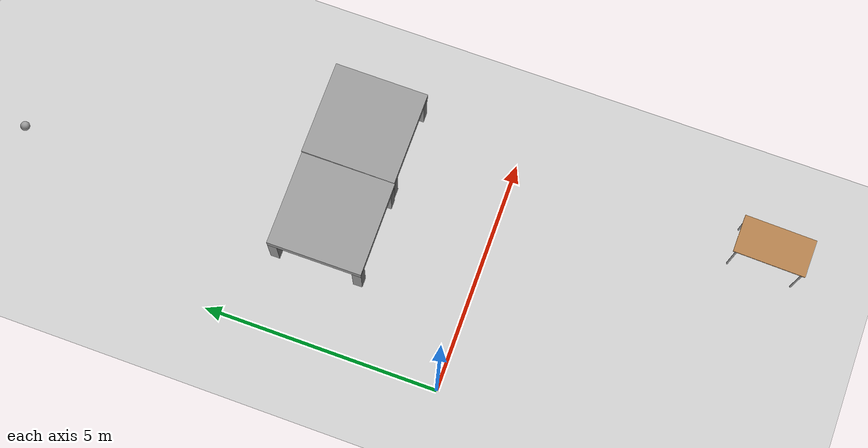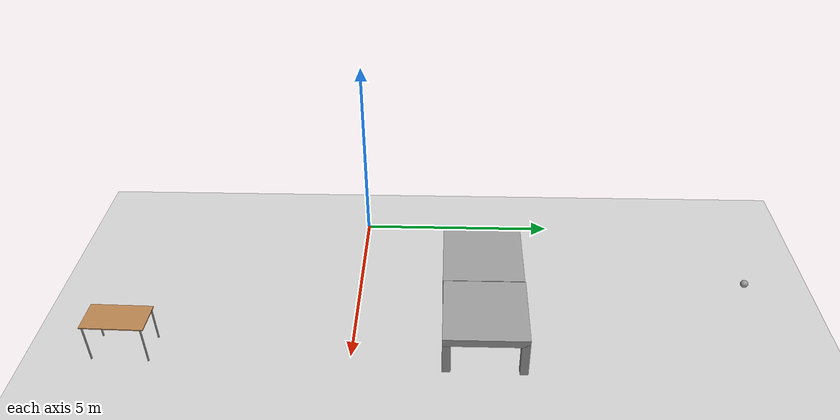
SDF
<sdf version="1.6">
 <world name="default">
  <model name="ground_plane">
   <static>1</static>
   <link name="link">
    <collision name="collision">
     <geometry><plane><normal>0 0 1</normal><size>100 100</size></plane></geometry>
     <surface>
      <contact><collide_bitmask>65535</collide_bitmask></contact>
      <friction><ode><mu>100</mu><mu2>50</mu2></ode></friction>
     </surface>
    </collision>
    <visual name="visual">
     <cast_shadows>0</cast_shadows>
     <geometry><plane><normal>0 0 1</normal><size>100 100</size></plane></geometry>
     <material>
      <script><uri>file://media/materials/scripts/gazebo.material</uri><name>Gazebo/Grey</name></script>
     </material>
    </visual>
   </link>
  </model>
  <model name="TableSmall_clone">
   <link name="link_0">
    <pose>0.868 -0.9 -0.096 0 -0 0</pose>
    <inertial>
     <mass>1</mass>
     <inertia>
      <ixx>0.166667</ixx>
      <ixy>0</ixy>
      <ixz>0</ixz>
      <iyy>0.166667</iyy>
      <iyz>0</iyz>
      <izz>0.166667</izz>
     </inertia>
    </inertial>
    <visual name="visual">
     <geometry><box><size>0.2 0.2 1</size></box></geometry>
     <material>
      <lighting>1</lighting>
      <script><uri>file://media/materials/scripts/gazebo.material</uri><name>Gazebo/Grey</name></script>
      <shader type="pixel"><normal_map>__default__</normal_map></shader>
      <ambient>0.3 0.3 0.3 1</ambient>
      <diffuse>0.7 0.7 0.7 1</diffuse>
      <specular>0.01 0.01 0.01 1</specular>
      <emissive>0 0 0 1</emissive>
     </material>
    </visual>
    <collision name="collision">
     <geometry><box><size>0.2 0.2 1</size></box></geometry>
     <surface>
      <friction>
       <ode><mu>1</mu><mu2>1</mu2><fdir1>0 0 0</fdir1><slip1>0</slip1><slip2>0</slip2></ode>
       <torsional>
        <coefficient>1</coefficient>
        <patch_radius>0</patch_radius>
        <surface_radius>0</surface_radius>
        <use_patch_radius>1</use_patch_radius>
        <ode><slip>0</slip></ode>
       </torsional>
      </friction>
      <bounce><restitution_coefficient>0</restitution_coefficient><threshold>1e+06</threshold></bounce>
      <contact>
       <collide_without_contact>0</collide_without_contact>
       <collide_without_contact_bitmask>1</collide_without_contact_bitmask>
       <collide_bitmask>1</collide_bitmask>
       <ode>
        <soft_cfm>0</soft_cfm>
        <soft_erp>0.2</soft_erp>
        <kp>1e+13</kp>
        <kd>1</kd>
        <max_vel>0.01</max_vel>
        <min_depth>0</min_depth>
       </ode>
       <bullet>
        <split_impulse>1</split_impulse>
        <split_impulse_penetration_threshold>-0.01</split_impulse_penetration_threshold>
        <soft_cfm>0</soft_cfm>
        <soft_erp>0.2</soft_erp>
        <kp>1e+13</kp>
        <kd>1</kd>
       </bullet>
      </contact>
     </surface>
    </collision>
   </link>
   <link name="link_0_clone">
    <pose>-0.892 -0.9 -0.096 0 -0 0</pose>
    <inertial>
     <mass>1</mass>
     <inertia>
      <ixx>0.166667</ixx>
      <ixy>0</ixy>
      <ixz>0</ixz>
      <iyy>0.166667</iyy>
      <iyz>0</iyz>
      <izz>0.166667</izz>
     </inertia>
    </inertial>
    <visual name="visual">
     <geometry><box><size>0.2 0.2 1</size></box></geometry>
     <material>
      <lighting>1</lighting>
      <script><uri>file://media/materials/scripts/gazebo.material</uri><name>Gazebo/Grey</name></script>
      <shader type="pixel"><normal_map>__default__</normal_map></shader>
      <ambient>0.3 0.3 0.3 1</ambient>
      <diffuse>0.7 0.7 0.7 1</diffuse>
      <specular>0.01 0.01 0.01 1</specular>
      <emissive>0 0 0 1</emissive>
     </material>
    </visual>
    <collision name="collision">
     <geometry><box><size>0.2 0.2 1</size></box></geometry>
     <surface>
      <friction>
       <ode><mu>1</mu><mu2>1</mu2><fdir1>0 0 0</fdir1><slip1>0</slip1><slip2>0</slip2></ode>
       <torsional>
        <coefficient>1</coefficient>
        <patch_radius>0</patch_radius>
        <surface_radius>0</surface_radius>
        <use_patch_radius>1</use_patch_radius>
        <ode><slip>0</slip></ode>
       </torsional>
      </friction>
      <bounce><restitution_coefficient>0</restitution_coefficient><threshold>1e+06</threshold></bounce>
      <contact>
       <collide_without_contact>0</collide_without_contact>
       <collide_without_contact_bitmask>1</collide_without_contact_bitmask>
       <collide_bitmask>1</collide_bitmask>
       <ode>
        <soft_cfm>0</soft_cfm>
        <soft_erp>0.2</soft_erp>
        <kp>1e+13</kp>
        <kd>1</kd>
        <max_vel>0.01</max_vel>
        <min_depth>0</min_depth>
       </ode>
       <bullet>
        <split_impulse>1</split_impulse>
        <split_impulse_penetration_threshold>-0.01</split_impulse_penetration_threshold>
        <soft_cfm>0</soft_cfm>
        <soft_erp>0.2</soft_erp>
        <kp>1e+13</kp>
        <kd>1</kd>
       </bullet>
      </contact>
     </surface>
    </collision>
   </link>
   <link name="link_0_clone_0">
    <pose>-0.892 0.9 -0.096 0 -0 0</pose>
    <inertial>
     <mass>1</mass>
     <inertia>
      <ixx>0.166667</ixx>
      <ixy>0</ixy>
      <ixz>0</ixz>
      <iyy>0.166667</iyy>
      <iyz>0</iyz>
      <izz>0.166667</izz>
     </inertia>
    </inertial>
    <visual name="visual">
     <geometry><box><size>0.2 0.2 1</size></box></geometry>
     <material>
      <lighting>1</lighting>
      <script><uri>file://media/materials/scripts/gazebo.material</uri><name>Gazebo/Grey</name></script>
      <shader type="pixel"><normal_map>__default__</normal_map></shader>
      <ambient>0.3 0.3 0.3 1</ambient>
      <diffuse>0.7 0.7 0.7 1</diffuse>
      <specular>0.01 0.01 0.01 1</specular>
      <emissive>0 0 0 1</emissive>
     </material>
    </visual>
    <collision name="collision">
     <geometry><box><size>0.2 0.2 1</size></box></geometry>
     <surface>
      <friction>
       <ode><mu>1</mu><mu2>1</mu2><fdir1>0 0 0</fdir1><slip1>0</slip1><slip2>0</slip2></ode>
       <torsional>
        <coefficient>1</coefficient>
        <patch_radius>0</patch_radius>
        <surface_radius>0</surface_radius>
        <use_patch_radius>1</use_patch_radius>
        <ode><slip>0</slip></ode>
       </torsional>
      </friction>
      <bounce><restitution_coefficient>0</restitution_coefficient><threshold>1e+06</threshold></bounce>
      <contact>
       <collide_without_contact>0</collide_without_contact>
       <collide_without_contact_bitmask>1</collide_without_contact_bitmask>
       <collide_bitmask>1</collide_bitmask>
       <ode>
        <soft_cfm>0</soft_cfm>
        <soft_erp>0.2</soft_erp>
        <kp>1e+13</kp>
        <kd>1</kd>
        <max_vel>0.01</max_vel>
        <min_depth>0</min_depth>
       </ode>
       <bullet>
        <split_impulse>1</split_impulse>
        <split_impulse_penetration_threshold>-0.01</split_impulse_penetration_threshold>
        <soft_cfm>0</soft_cfm>
        <soft_erp>0.2</soft_erp>
        <kp>1e+13</kp>
        <kd>1</kd>
       </bullet>
      </contact>
     </surface>
    </collision>
   </link>
   <link name="link_0_clone_1">
    <pose>0.908 0.9 -0.096 0 -0 0</pose>
    <inertial>
     <mass>1</mass>
     <inertia>
      <ixx>0.166667</ixx>
      <ixy>0</ixy>
      <ixz>0</ixz>
      <iyy>0.166667</iyy>
      <iyz>0</iyz>
      <izz>0.166667</izz>
     </inertia>
    </inertial>
    <visual name="visual">
     <geometry><box><size>0.2 0.2 1</size></box></geometry>
     <material>
      <lighting>1</lighting>
      <script><uri>file://media/materials/scripts/gazebo.material</uri><name>Gazebo/Grey</name></script>
      <shader type="pixel"><normal_map>__default__</normal_map></shader>
      <ambient>0.3 0.3 0.3 1</ambient>
      <diffuse>0.7 0.7 0.7 1</diffuse>
      <specular>0.01 0.01 0.01 1</specular>
      <emissive>0 0 0 1</emissive>
     </material>
    </visual>
    <collision name="collision">
     <geometry><box><size>0.2 0.2 1</size></box></geometry>
     <surface>
      <friction>
       <ode><mu>1</mu><mu2>1</mu2><fdir1>0 0 0</fdir1><slip1>0</slip1><slip2>0</slip2></ode>
       <torsional>
        <coefficient>1</coefficient>
        <patch_radius>0</patch_radius>
        <surface_radius>0</surface_radius>
        <use_patch_radius>1</use_patch_radius>
        <ode><slip>0</slip></ode>
       </torsional>
      </friction>
      <bounce><restitution_coefficient>0</restitution_coefficient><threshold>1e+06</threshold></bounce>
      <contact>
       <collide_without_contact>0</collide_without_contact>
       <collide_without_contact_bitmask>1</collide_without_contact_bitmask>
       <collide_bitmask>1</collide_bitmask>
       <ode>
        <soft_cfm>0</soft_cfm>
        <soft_erp>0.2</soft_erp>
        <kp>1e+13</kp>
        <kd>1</kd>
        <max_vel>0.01</max_vel>
        <min_depth>0</min_depth>
       </ode>
       <bullet>
        <split_impulse>1</split_impulse>
        <split_impulse_penetration_threshold>-0.01</split_impulse_penetration_threshold>
        <soft_cfm>0</soft_cfm>
        <soft_erp>0.2</soft_erp>
        <kp>1e+13</kp>
        <kd>1</kd>
       </bullet>
      </contact>
     </surface>
    </collision>
   </link>
   <link name="link_1">
    <pose>0.008 0 0.384 0 -0 0</pose>
    <inertial>
     <mass>1</mass>
     <inertia>
      <ixx>0.166667</ixx>
      <ixy>0</ixy>
      <ixz>0</ixz>
      <iyy>0.166667</iyy>
      <iyz>0</iyz>
      <izz>0.166667</izz>
     </inertia>
    </inertial>
    <visual name="visual">
     <geometry><box><size>2 2 0.2</size></box></geometry>
     <material>
      <lighting>1</lighting>
      <script><uri>file://media/materials/scripts/gazebo.material</uri><name>Gazebo/Grey</name></script>
      <shader type="pixel"><normal_map>__default__</normal_map></shader>
      <ambient>0.3 0.3 0.3 1</ambient>
      <diffuse>0.7 0.7 0.7 1</diffuse>
      <specular>0.01 0.01 0.01 1</specular>
      <emissive>0 0 0 1</emissive>
     </material>
    </visual>
    <collision name="collision">
     <geometry><box><size>2 2 0.2</size></box></geometry>
     <surface>
      <friction>
       <ode><mu>1</mu><mu2>1</mu2><fdir1>0 0 0</fdir1><slip1>0</slip1><slip2>0</slip2></ode>
       <torsional>
        <coefficient>1</coefficient>
        <patch_radius>0</patch_radius>
        <surface_radius>0</surface_radius>
        <use_patch_radius>1</use_patch_radius>
        <ode><slip>0</slip></ode>
       </torsional>
      </friction>
      <bounce><restitution_coefficient>0</restitution_coefficient><threshold>1e+06</threshold></bounce>
      <contact>
       <collide_without_contact>0</collide_without_contact>
       <collide_without_contact_bitmask>1</collide_without_contact_bitmask>
       <collide_bitmask>1</collide_bitmask>
       <ode>
        <soft_cfm>0</soft_cfm>
        <soft_erp>0.2</soft_erp>
        <kp>1e+13</kp>
        <kd>1</kd>
        <max_vel>0.01</max_vel>
        <min_depth>0</min_depth>
       </ode>
       <bullet>
        <split_impulse>1</split_impulse>
        <split_impulse_penetration_threshold>-0.01</split_impulse_penetration_threshold>
        <soft_cfm>0</soft_cfm>
        <soft_erp>0.2</soft_erp>
        <kp>1e+13</kp>
        <kd>1</kd>
       </bullet>
      </contact>
     </surface>
    </collision>
   </link>
   <joint name="link_1_JOINT_0" type="fixed">
    <parent>link_1</parent>
    <child>link_0_clone_1</child>
    <physics>
     <ode><limit><cfm>0</cfm><erp>0.2</erp></limit><suspension><cfm>0</cfm><erp>0.2</erp></suspension></ode>
    </physics>
   </joint>
   <joint name="link_1_JOINT_1" type="fixed">
    <parent>link_1</parent>
    <child>link_0_clone_0</child>
    <physics>
     <ode><limit><cfm>0</cfm><erp>0.2</erp></limit><suspension><cfm>0</cfm><erp>0.2</erp></suspension></ode>
    </physics>
   </joint>
   <joint name="link_1_JOINT_2" type="revolute">
    <parent>link_1</parent>
    <child>link_0</child>
    <axis>
     <xyz>1 0 0</xyz>
     <use_parent_model_frame>0</use_parent_model_frame>
     <limit>
      <lower>-1.79769e+308</lower>
      <upper>1.79769e+308</upper>
      <effort>-1</effort>
      <velocity>-1</velocity>
     </limit>
     <dynamics>
      <spring_reference>0</spring_reference>
      <spring_stiffness>0</spring_stiffness>
      <damping>0</damping>
     </dynamics>
    </axis>
    <physics>
     <ode><limit><cfm>0</cfm><erp>0.2</erp></limit><suspension><cfm>0</cfm><erp>0.2</erp></suspension></ode>
    </physics>
   </joint>
   <joint name="link_1_JOINT_3" type="revolute">
    <parent>link_1</parent>
    <child>link_0_clone</child>
    <axis>
     <xyz>1 0 0</xyz>
     <use_parent_model_frame>0</use_parent_model_frame>
     <limit>
      <lower>-1.79769e+308</lower>
      <upper>1.79769e+308</upper>
      <effort>-1</effort>
      <velocity>-1</velocity>
     </limit>
     <dynamics>
      <spring_reference>0</spring_reference>
      <spring_stiffness>0</spring_stiffness>
      <damping>0</damping>
     </dynamics>
    </axis>
    <physics>
     <ode><limit><cfm>0</cfm><erp>0.2</erp></limit><suspension><cfm>0</cfm><erp>0.2</erp></suspension></ode>
    </physics>
   </joint>
   <static>0</static>
   <pose>4.49064 3.159 0.596 0 0 -0.001941</pose>
  </model>
  <model name="TableSmall_clone_clone">
   <link name="link_0">
    <pose>0.868 -0.9 -0.096 0 -0 0</pose>
    <inertial>
     <mass>1</mass>
     <inertia>
      <ixx>0.166667</ixx>
      <ixy>0</ixy>
      <ixz>0</ixz>
      <iyy>0.166667</iyy>
      <iyz>0</iyz>
      <izz>0.166667</izz>
     </inertia>
    </inertial>
    <visual name="visual">
     <geometry><box><size>0.2 0.2 1</size></box></geometry>
     <material>
      <lighting>1</lighting>
      <script><uri>file://media/materials/scripts/gazebo.material</uri><name>Gazebo/Grey</name></script>
      <shader type="pixel"><normal_map>__default__</normal_map></shader>
      <ambient>0.3 0.3 0.3 1</ambient>
      <diffuse>0.7 0.7 0.7 1</diffuse>
      <specular>0.01 0.01 0.01 1</specular>
      <emissive>0 0 0 1</emissive>
     </material>
    </visual>
    <collision name="collision">
     <geometry><box><size>0.2 0.2 1</size></box></geometry>
     <surface>
      <friction>
       <ode><mu>1</mu><mu2>1</mu2><fdir1>0 0 0</fdir1><slip1>0</slip1><slip2>0</slip2></ode>
       <torsional>
        <coefficient>1</coefficient>
        <patch_radius>0</patch_radius>
        <surface_radius>0</surface_radius>
        <use_patch_radius>1</use_patch_radius>
        <ode><slip>0</slip></ode>
       </torsional>
      </friction>
      <bounce><restitution_coefficient>0</restitution_coefficient><threshold>1e+06</threshold></bounce>
      <contact>
       <collide_without_contact>0</collide_without_contact>
       <collide_without_contact_bitmask>1</collide_without_contact_bitmask>
       <collide_bitmask>1</collide_bitmask>
       <ode>
        <soft_cfm>0</soft_cfm>
        <soft_erp>0.2</soft_erp>
        <kp>1e+13</kp>
        <kd>1</kd>
        <max_vel>0.01</max_vel>
        <min_depth>0</min_depth>
       </ode>
       <bullet>
        <split_impulse>1</split_impulse>
        <split_impulse_penetration_threshold>-0.01</split_impulse_penetration_threshold>
        <soft_cfm>0</soft_cfm>
        <soft_erp>0.2</soft_erp>
        <kp>1e+13</kp>
        <kd>1</kd>
       </bullet>
      </contact>
     </surface>
    </collision>
   </link>
   <link name="link_0_clone">
    <pose>-0.892 -0.9 -0.096 0 -0 0</pose>
    <inertial>
     <mass>1</mass>
     <inertia>
      <ixx>0.166667</ixx>
      <ixy>0</ixy>
      <ixz>0</ixz>
      <iyy>0.166667</iyy>
      <iyz>0</iyz>
      <izz>0.166667</izz>
     </inertia>
    </inertial>
    <visual name="visual">
     <geometry><box><size>0.2 0.2 1</size></box></geometry>
     <material>
      <lighting>1</lighting>
      <script><uri>file://media/materials/scripts/gazebo.material</uri><name>Gazebo/Grey</name></script>
      <shader type="pixel"><normal_map>__default__</normal_map></shader>
      <ambient>0.3 0.3 0.3 1</ambient>
      <diffuse>0.7 0.7 0.7 1</diffuse>
      <specular>0.01 0.01 0.01 1</specular>
      <emissive>0 0 0 1</emissive>
     </material>
    </visual>
    <collision name="collision">
     <geometry><box><size>0.2 0.2 1</size></box></geometry>
     <surface>
      <friction>
       <ode><mu>1</mu><mu2>1</mu2><fdir1>0 0 0</fdir1><slip1>0</slip1><slip2>0</slip2></ode>
       <torsional>
        <coefficient>1</coefficient>
        <patch_radius>0</patch_radius>
        <surface_radius>0</surface_radius>
        <use_patch_radius>1</use_patch_radius>
        <ode><slip>0</slip></ode>
       </torsional>
      </friction>
      <bounce><restitution_coefficient>0</restitution_coefficient><threshold>1e+06</threshold></bounce>
      <contact>
       <collide_without_contact>0</collide_without_contact>
       <collide_without_contact_bitmask>1</collide_without_contact_bitmask>
       <collide_bitmask>1</collide_bitmask>
       <ode>
        <soft_cfm>0</soft_cfm>
        <soft_erp>0.2</soft_erp>
        <kp>1e+13</kp>
        <kd>1</kd>
        <max_vel>0.01</max_vel>
        <min_depth>0</min_depth>
       </ode>
       <bullet>
        <split_impulse>1</split_impulse>
        <split_impulse_penetration_threshold>-0.01</split_impulse_penetration_threshold>
        <soft_cfm>0</soft_cfm>
        <soft_erp>0.2</soft_erp>
        <kp>1e+13</kp>
        <kd>1</kd>
       </bullet>
      </contact>
     </surface>
    </collision>
   </link>
   <link name="link_0_clone_0">
    <pose>-0.892 0.9 -0.096 0 -0 0</pose>
    <inertial>
     <mass>1</mass>
     <inertia>
      <ixx>0.166667</ixx>
      <ixy>0</ixy>
      <ixz>0</ixz>
      <iyy>0.166667</iyy>
      <iyz>0</iyz>
      <izz>0.166667</izz>
     </inertia>
    </inertial>
    <visual name="visual">
     <geometry><box><size>0.2 0.2 1</size></box></geometry>
     <material>
      <lighting>1</lighting>
      <script><uri>file://media/materials/scripts/gazebo.material</uri><name>Gazebo/Grey</name></script>
      <shader type="pixel"><normal_map>__default__</normal_map></shader>
      <ambient>0.3 0.3 0.3 1</ambient>
      <diffuse>0.7 0.7 0.7 1</diffuse>
      <specular>0.01 0.01 0.01 1</specular>
      <emissive>0 0 0 1</emissive>
     </material>
    </visual>
    <collision name="collision">
     <geometry><box><size>0.2 0.2 1</size></box></geometry>
     <surface>
      <friction>
       <ode><mu>1</mu><mu2>1</mu2><fdir1>0 0 0</fdir1><slip1>0</slip1><slip2>0</slip2></ode>
       <torsional>
        <coefficient>1</coefficient>
        <patch_radius>0</patch_radius>
        <surface_radius>0</surface_radius>
        <use_patch_radius>1</use_patch_radius>
        <ode><slip>0</slip></ode>
       </torsional>
      </friction>
      <bounce><restitution_coefficient>0</restitution_coefficient><threshold>1e+06</threshold></bounce>
      <contact>
       <collide_without_contact>0</collide_without_contact>
       <collide_without_contact_bitmask>1</collide_without_contact_bitmask>
       <collide_bitmask>1</collide_bitmask>
       <ode>
        <soft_cfm>0</soft_cfm>
        <soft_erp>0.2</soft_erp>
        <kp>1e+13</kp>
        <kd>1</kd>
        <max_vel>0.01</max_vel>
        <min_depth>0</min_depth>
       </ode>
       <bullet>
        <split_impulse>1</split_impulse>
        <split_impulse_penetration_threshold>-0.01</split_impulse_penetration_threshold>
        <soft_cfm>0</soft_cfm>
        <soft_erp>0.2</soft_erp>
        <kp>1e+13</kp>
        <kd>1</kd>
       </bullet>
      </contact>
     </surface>
    </collision>
   </link>
   <link name="link_0_clone_1">
    <pose>0.908 0.9 -0.096 0 -0 0</pose>
    <inertial>
     <mass>1</mass>
     <inertia>
      <ixx>0.166667</ixx>
      <ixy>0</ixy>
      <ixz>0</ixz>
      <iyy>0.166667</iyy>
      <iyz>0</iyz>
      <izz>0.166667</izz>
     </inertia>
    </inertial>
    <visual name="visual">
     <geometry><box><size>0.2 0.2 1</size></box></geometry>
     <material>
      <lighting>1</lighting>
      <script><uri>file://media/materials/scripts/gazebo.material</uri><name>Gazebo/Grey</name></script>
      <shader type="pixel"><normal_map>__default__</normal_map></shader>
      <ambient>0.3 0.3 0.3 1</ambient>
      <diffuse>0.7 0.7 0.7 1</diffuse>
      <specular>0.01 0.01 0.01 1</specular>
      <emissive>0 0 0 1</emissive>
     </material>
    </visual>
    <collision name="collision">
     <geometry><box><size>0.2 0.2 1</size></box></geometry>
     <surface>
      <friction>
       <ode><mu>1</mu><mu2>1</mu2><fdir1>0 0 0</fdir1><slip1>0</slip1><slip2>0</slip2></ode>
       <torsional>
        <coefficient>1</coefficient>
        <patch_radius>0</patch_radius>
        <surface_radius>0</surface_radius>
        <use_patch_radius>1</use_patch_radius>
        <ode><slip>0</slip></ode>
       </torsional>
      </friction>
      <bounce><restitution_coefficient>0</restitution_coefficient><threshold>1e+06</threshold></bounce>
      <contact>
       <collide_without_contact>0</collide_without_contact>
       <collide_without_contact_bitmask>1</collide_without_contact_bitmask>
       <collide_bitmask>1</collide_bitmask>
       <ode>
        <soft_cfm>0</soft_cfm>
        <soft_erp>0.2</soft_erp>
        <kp>1e+13</kp>
        <kd>1</kd>
        <max_vel>0.01</max_vel>
        <min_depth>0</min_depth>
       </ode>
       <bullet>
        <split_impulse>1</split_impulse>
        <split_impulse_penetration_threshold>-0.01</split_impulse_penetration_threshold>
        <soft_cfm>0</soft_cfm>
        <soft_erp>0.2</soft_erp>
        <kp>1e+13</kp>
        <kd>1</kd>
       </bullet>
      </contact>
     </surface>
    </collision>
   </link>
   <link name="link_1">
    <pose>0.008 0 0.384 0 -0 0</pose>
    <inertial>
     <mass>1</mass>
     <inertia>
      <ixx>0.166667</ixx>
      <ixy>0</ixy>
      <ixz>0</ixz>
      <iyy>0.166667</iyy>
      <iyz>0</iyz>
      <izz>0.166667</izz>
     </inertia>
    </inertial>
    <visual name="visual">
     <geometry><box><size>2 2 0.2</size></box></geometry>
     <material>
      <lighting>1</lighting>
      <script><uri>file://media/materials/scripts/gazebo.material</uri><name>Gazebo/Grey</name></script>
      <shader type="pixel"><normal_map>__default__</normal_map></shader>
      <ambient>0.3 0.3 0.3 1</ambient>
      <diffuse>0.7 0.7 0.7 1</diffuse>
      <specular>0.01 0.01 0.01 1</specular>
      <emissive>0 0 0 1</emissive>
     </material>
    </visual>
    <collision name="collision">
     <geometry><box><size>2 2 0.2</size></box></geometry>
     <surface>
      <friction>
       <ode><mu>1</mu><mu2>1</mu2><fdir1>0 0 0</fdir1><slip1>0</slip1><slip2>0</slip2></ode>
       <torsional>
        <coefficient>1</coefficient>
        <patch_radius>0</patch_radius>
        <surface_radius>0</surface_radius>
        <use_patch_radius>1</use_patch_radius>
        <ode><slip>0</slip></ode>
       </torsional>
      </friction>
      <bounce><restitution_coefficient>0</restitution_coefficient><threshold>1e+06</threshold></bounce>
      <contact>
       <collide_without_contact>0</collide_without_contact>
       <collide_without_contact_bitmask>1</collide_without_contact_bitmask>
       <collide_bitmask>1</collide_bitmask>
       <ode>
        <soft_cfm>0</soft_cfm>
        <soft_erp>0.2</soft_erp>
        <kp>1e+13</kp>
        <kd>1</kd>
        <max_vel>0.01</max_vel>
        <min_depth>0</min_depth>
       </ode>
       <bullet>
        <split_impulse>1</split_impulse>
        <split_impulse_penetration_threshold>-0.01</split_impulse_penetration_threshold>
        <soft_cfm>0</soft_cfm>
        <soft_erp>0.2</soft_erp>
        <kp>1e+13</kp>
        <kd>1</kd>
       </bullet>
      </contact>
     </surface>
    </collision>
   </link>
   <joint name="link_1_JOINT_0" type="fixed">
    <parent>link_1</parent>
    <child>link_0_clone_1</child>
    <physics>
     <ode><limit><cfm>0</cfm><erp>0.2</erp></limit><suspension><cfm>0</cfm><erp>0.2</erp></suspension></ode>
    </physics>
   </joint>
   <joint name="link_1_JOINT_1" type="fixed">
    <parent>link_1</parent>
    <child>link_0_clone_0</child>
    <physics>
     <ode><limit><cfm>0</cfm><erp>0.2</erp></limit><suspension><cfm>0</cfm><erp>0.2</erp></suspension></ode>
    </physics>
   </joint>
   <joint name="link_1_JOINT_2" type="revolute">
    <parent>link_1</parent>
    <child>link_0</child>
    <axis>
     <xyz>1 0 0</xyz>
     <use_parent_model_frame>0</use_parent_model_frame>
     <limit>
      <lower>-1.79769e+308</lower>
      <upper>1.79769e+308</upper>
      <effort>-1</effort>
      <velocity>-1</velocity>
     </limit>
     <dynamics>
      <spring_reference>0</spring_reference>
      <spring_stiffness>0</spring_stiffness>
      <damping>0</damping>
     </dynamics>
    </axis>
    <physics>
     <ode><limit><cfm>0</cfm><erp>0.2</erp></limit><suspension><cfm>0</cfm><erp>0.2</erp></suspension></ode>
    </physics>
   </joint>
   <joint name="link_1_JOINT_3" type="revolute">
    <parent>link_1</parent>
    <child>link_0_clone</child>
    <axis>
     <xyz>1 0 0</xyz>
     <use_parent_model_frame>0</use_parent_model_frame>
     <limit>
      <lower>-1.79769e+308</lower>
      <upper>1.79769e+308</upper>
      <effort>-1</effort>
      <velocity>-1</velocity>
     </limit>
     <dynamics>
      <spring_reference>0</spring_reference>
      <spring_stiffness>0</spring_stiffness>
      <damping>0</damping>
     </dynamics>
    </axis>
    <physics>
     <ode><limit><cfm>0</cfm><erp>0.2</erp></limit><suspension><cfm>0</cfm><erp>0.2</erp></suspension></ode>
    </physics>
   </joint>
   <static>0</static>
   <pose>2.47933 3.14058 0.595998 -3e-06 -0 0.003378</pose>
  </model>
  <model name="table_0">
   <static>1</static>
   <link name="link">
    <collision name="surface">
     <pose>0 0 1 0 -0 0</pose>
     <geometry><box><size>1.5 0.8 0.03</size></box></geometry>
     <surface><friction><ode><mu>0.6</mu><mu2>0.6</mu2></ode></friction></surface>
    </collision>
    <visual name="visual1">
     <pose>0 0 1 0 -0 0</pose>
     <geometry><box><size>1.5 0.8 0.03</size></box></geometry>
     <material>
      <script><uri>file://media/materials/scripts/gazebo.material</uri><name>Gazebo/Wood</name></script>
     </material>
    </visual>
    <collision name="front_left_leg">
     <pose>0.68 0.38 0.5 0 -0 0</pose>
     <geometry><cylinder><radius>0.02</radius><length>1</length></cylinder></geometry>
    </collision>
    <visual name="front_left_leg">
     <pose>0.68 0.38 0.5 0 -0 0</pose>
     <geometry><cylinder><radius>0.02</radius><length>1</length></cylinder></geometry>
     <material>
      <script><uri>file://media/materials/scripts/gazebo.material</uri><name>Gazebo/Grey</name></script>
     </material>
    </visual>
    <collision name="front_right_leg">
     <pose>0.68 -0.38 0.5 0 -0 0</pose>
     <geometry><cylinder><radius>0.02</radius><length>1</length></cylinder></geometry>
    </collision>
    <visual name="front_right_leg">
     <pose>0.68 -0.38 0.5 0 -0 0</pose>
     <geometry><cylinder><radius>0.02</radius><length>1</length></cylinder></geometry>
     <material>
      <script><uri>file://media/materials/scripts/gazebo.material</uri><name>Gazebo/Grey</name></script>
     </material>
    </visual>
    <collision name="back_right_leg">
     <pose>-0.68 -0.38 0.5 0 -0 0</pose>
     <geometry><cylinder><radius>0.02</radius><length>1</length></cylinder></geometry>
    </collision>
    <visual name="back_right_leg">
     <pose>-0.68 -0.38 0.5 0 -0 0</pose>
     <geometry><cylinder><radius>0.02</radius><length>1</length></cylinder></geometry>
     <material>
      <script><uri>file://media/materials/scripts/gazebo.material</uri><name>Gazebo/Grey</name></script>
     </material>
    </visual>
    <collision name="back_left_leg">
     <pose>-0.68 0.38 0.5 0 -0 0</pose>
     <geometry><cylinder><radius>0.02</radius><length>1</length></cylinder></geometry>
    </collision>
    <visual name="back_left_leg">
     <pose>-0.68 0.38 0.5 0 -0 0</pose>
     <geometry><cylinder><radius>0.02</radius><length>1</length></cylinder></geometry>
     <material>
      <script><uri>file://media/materials/scripts/gazebo.material</uri><name>Gazebo/Grey</name></script>
     </material>
    </visual>
   </link>
   <pose>4.86917 -5.41271 0 0 0 -1.59317</pose>
  </model>
  <model name="my_ball">
   <link name="link_0">
    <pose>-0 3 0 0 -0 0</pose>
    <inertial>
     <mass>1</mass>
     <inertia><ixx>0.1</ixx><ixy>0</ixy><ixz>0</ixz><iyy>0.1</iyy><iyz>0</iyz><izz>0.1</izz></inertia>
    </inertial>
    <visual name="visual">
     <geometry><sphere><radius>0.1</radius></sphere></geometry>
     <material>
      <lighting>1</lighting>
      <script><uri>file://media/materials/scripts/gazebo.material</uri><name>Gazebo/Grey</name></script>
      <shader type="pixel"><normal_map>__default__</normal_map></shader>
      <ambient>1 1 1 1</ambient>
      <diffuse>1 1 1 1</diffuse>
      <specular>1 1 1 1</specular>
      <emissive>1 1 1 1</emissive>
     </material>
    </visual>
    <collision name="collision">
     <geometry><sphere><radius>0.1</radius></sphere></geometry>
     <surface>
      <friction>
       <ode><mu>1</mu><mu2>1</mu2><fdir1>0 0 0</fdir1><slip1>0</slip1><slip2>0</slip2></ode>
       <torsional>
        <coefficient>1</coefficient>
        <patch_radius>0</patch_radius>
        <surface_radius>0</surface_radius>
        <use_patch_radius>1</use_patch_radius>
        <ode><slip>0</slip></ode>
       </torsional>
      </friction>
      <bounce><restitution_coefficient>0</restitution_coefficient><threshold>1e+06</threshold></bounce>
      <contact>
       <collide_without_contact>0</collide_without_contact>
       <collide_without_contact_bitmask>1</collide_without_contact_bitmask>
       <collide_bitmask>1</collide_bitmask>
       <ode>
        <soft_cfm>0</soft_cfm>
        <soft_erp>0.2</soft_erp>
        <kp>1e+13</kp>
        <kd>1</kd>
        <max_vel>0.01</max_vel>
        <min_depth>0</min_depth>
       </ode>
       <bullet>
        <split_impulse>1</split_impulse>
        <split_impulse_penetration_threshold>-0.01</split_impulse_penetration_threshold>
        <soft_cfm>0</soft_cfm>
        <soft_erp>0.2</soft_erp>
        <kp>1e+13</kp>
        <kd>1</kd>
       </bullet>
      </contact>
     </surface>
    </collision>
   </link>
   <static>0</static>
   <pose>2.32019 6.96082 0.1 0 -0 0</pose>
  </model>
 </world>
</sdf>
